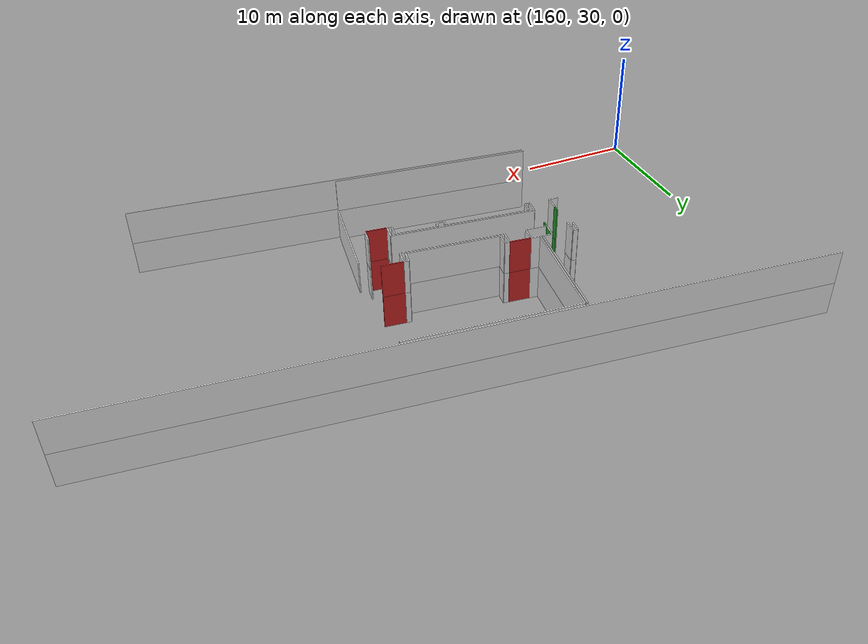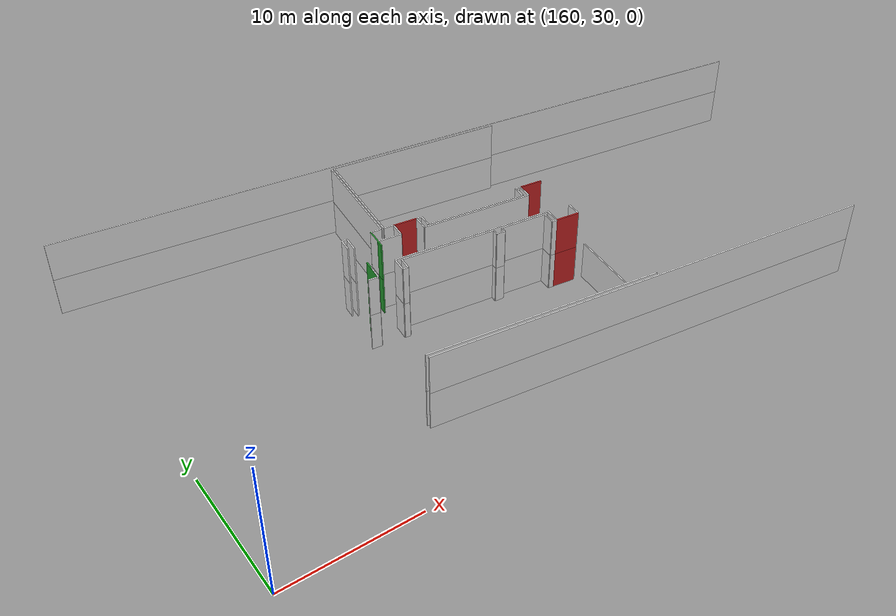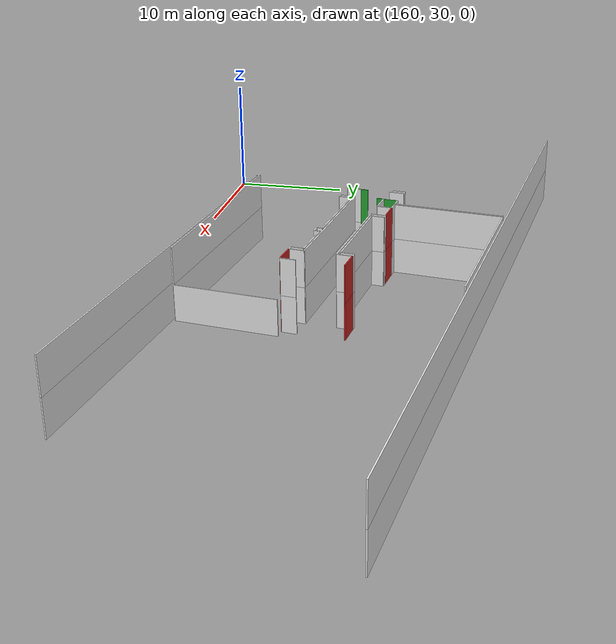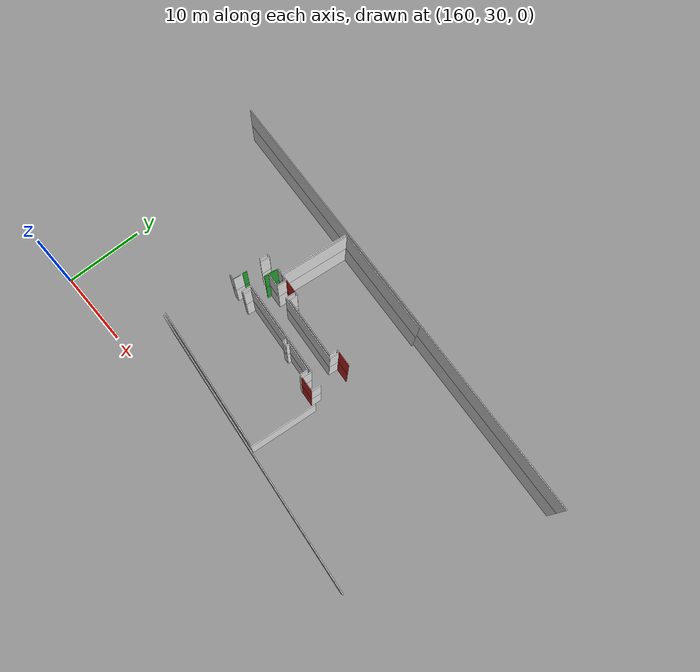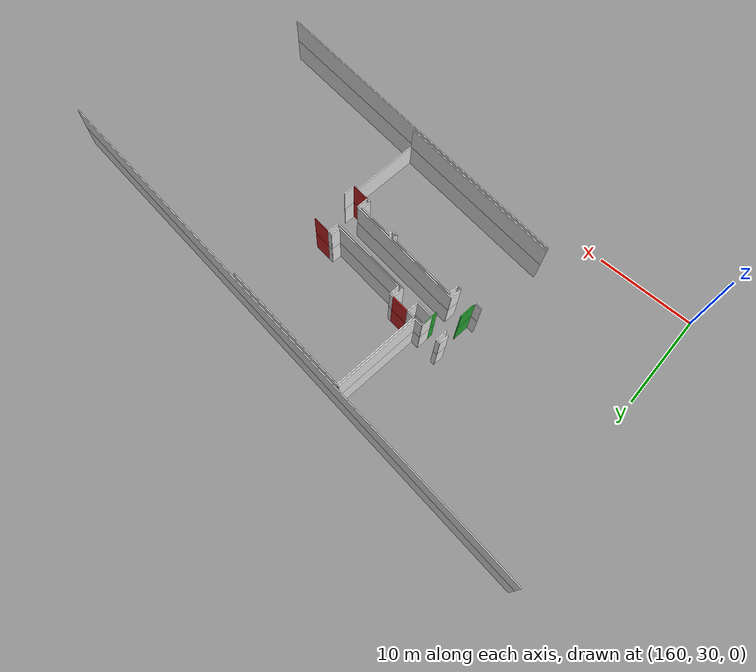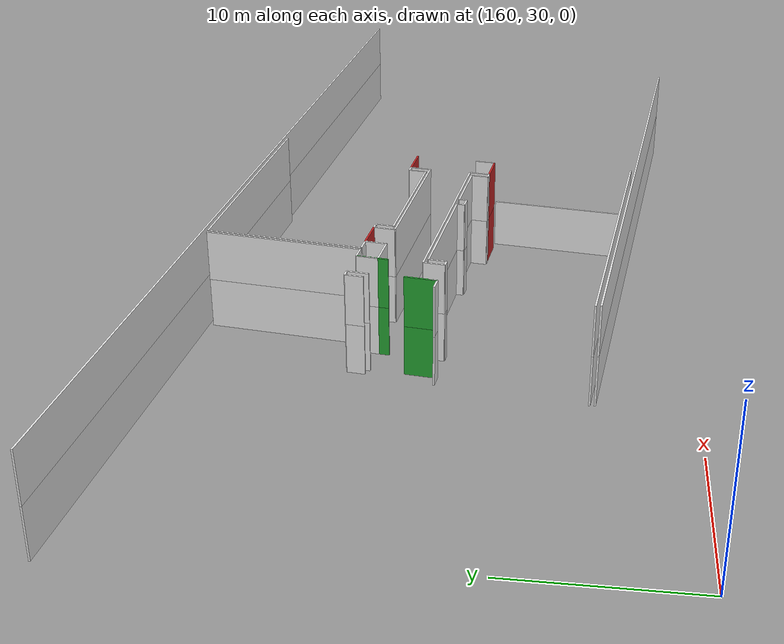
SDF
<sdf version="1.6">
 <world name="default">
  <model name="wall_191.0_47.1_1.5">
   <static>true</static>
   <pose>190.97500000000582 47.06499999994412 1.5 0 0 3.02480805813934</pose>
   <link name="link">
    <visual name="visual">
     <geometry><box><size>1.8022763383869123 0.1 3</size></box></geometry>
     <material>
      <script><uri>file://media/materials/scripts/gazebo.material</uri><name>Gazebo/Red</name></script>
     </material>
    </visual>
    <collision name="collision"><geometry><box><size>1.8022763383869123 0.1 3</size></box></geometry></collision>
   </link>
  </model>
  <model name="wall_180.6_48.3_1.5">
   <static>true</static>
   <pose>180.6350000000093 48.31000000005588 1.5 0 0 3.0193009299888676</pose>
   <link name="link">
    <visual name="visual">
     <geometry><box><size>1.8034688796923075 0.1 3</size></box></geometry>
     <material>
      <script><uri>file://media/materials/scripts/gazebo.material</uri><name>Gazebo/Red</name></script>
     </material>
    </visual>
    <collision name="collision"><geometry><box><size>1.8034688796923075 0.1 3</size></box></geometry></collision>
   </link>
  </model>
  <model name="wall_175.8_44.9_1.5">
   <static>true</static>
   <pose>175.80500000022585 44.86500000022352 1.5 0 0 1.4540117310915928</pose>
   <link name="link">
    <visual name="visual">
     <geometry><box><size>1.802276338498982 0.1 3</size></box></geometry>
     <material>
      <script><uri>file://media/materials/scripts/gazebo.material</uri><name>Gazebo/Green</name></script>
     </material>
    </visual>
    <collision name="collision"><geometry><box><size>1.802276338498982 0.1 3</size></box></geometry></collision>
   </link>
  </model>
  <model name="wall_190.5_42.2_1.5">
   <static>true</static>
   <pose>190.5 42.18999999994412 1.5 0 0 -0.12161902311549111</pose>
   <link name="link">
    <visual name="visual">
     <geometry><box><size>1.8133946068224918 0.1 3</size></box></geometry>
     <material>
      <script><uri>file://media/materials/scripts/gazebo.material</uri><name>Gazebo/Red</name></script>
     </material>
    </visual>
    <collision name="collision"><geometry><box><size>1.8133946068224918 0.1 3</size></box></geometry></collision>
   </link>
  </model>
  <model name="wall_177.8_47.7_1.5">
   <static>true</static>
   <pose>177.8499999999185 47.734999999869615 1.5 0 0 -1.6930880506520969</pose>
   <link name="link">
    <visual name="visual">
     <geometry><box><size>1.803468879749112 0.1 3</size></box></geometry>
     <material>
      <script><uri>file://media/materials/scripts/gazebo.material</uri><name>Gazebo/Green</name></script>
     </material>
    </visual>
    <collision name="collision"><geometry><box><size>1.803468879749112 0.1 3</size></box></geometry></collision>
   </link>
  </model>
  <model name="wall_191.0_47.1_4.5">
   <static>true</static>
   <pose>190.97500000000582 47.06499999994412 4.5 0 0 3.02480805813934</pose>
   <link name="link">
    <visual name="visual">
     <geometry><box><size>1.8022763383869123 0.1 3</size></box></geometry>
     <material>
      <script><uri>file://media/materials/scripts/gazebo.material</uri><name>Gazebo/Red</name></script>
     </material>
    </visual>
    <collision name="collision"><geometry><box><size>1.8022763383869123 0.1 3</size></box></geometry></collision>
   </link>
  </model>
  <model name="wall_180.6_48.3_4.5">
   <static>true</static>
   <pose>180.6350000000093 48.31000000005588 4.5 0 0 3.0193009299888676</pose>
   <link name="link">
    <visual name="visual">
     <geometry><box><size>1.8034688796923075 0.1 3</size></box></geometry>
     <material>
      <script><uri>file://media/materials/scripts/gazebo.material</uri><name>Gazebo/Red</name></script>
     </material>
    </visual>
    <collision name="collision"><geometry><box><size>1.8034688796923075 0.1 3</size></box></geometry></collision>
   </link>
  </model>
  <model name="wall_175.8_44.9_4.5">
   <static>true</static>
   <pose>175.80500000022585 44.86500000022352 4.5 0 0 1.4540117310915928</pose>
   <link name="link">
    <visual name="visual">
     <geometry><box><size>1.802276338498982 0.1 3</size></box></geometry>
     <material>
      <script><uri>file://media/materials/scripts/gazebo.material</uri><name>Gazebo/Green</name></script>
     </material>
    </visual>
    <collision name="collision"><geometry><box><size>1.802276338498982 0.1 3</size></box></geometry></collision>
   </link>
  </model>
  <model name="wall_190.5_42.2_4.5">
   <static>true</static>
   <pose>190.5 42.18999999994412 4.5 0 0 -0.12161902311549111</pose>
   <link name="link">
    <visual name="visual">
     <geometry><box><size>1.8133946068224918 0.1 3</size></box></geometry>
     <material>
      <script><uri>file://media/materials/scripts/gazebo.material</uri><name>Gazebo/Red</name></script>
     </material>
    </visual>
    <collision name="collision"><geometry><box><size>1.8133946068224918 0.1 3</size></box></geometry></collision>
   </link>
  </model>
  <model name="wall_177.8_47.7_4.5">
   <static>true</static>
   <pose>177.8499999999185 47.734999999869615 4.5 0 0 -1.6930880506520969</pose>
   <link name="link">
    <visual name="visual">
     <geometry><box><size>1.803468879749112 0.1 3</size></box></geometry>
     <material>
      <script><uri>file://media/materials/scripts/gazebo.material</uri><name>Gazebo/Green</name></script>
     </material>
    </visual>
    <collision name="collision"><geometry><box><size>1.803468879749112 0.1 3</size></box></geometry></collision>
   </link>
  </model>
  <model name="wall_189.9_47.2_1.5">
   <static>true</static>
   <pose>189.88000000000466 47.19500000006519 1.5 0 0 3.01723765836245</pose>
   <link name="link">
    <visual name="visual">
     <geometry><box><size>0.4031128874726857 0.1 3</size></box></geometry>
     <material>
      <script><uri>file://media/materials/scripts/gazebo.material</uri><name>Gazebo/White</name></script>
     </material>
    </visual>
    <collision name="collision"><geometry><box><size>0.4031128874726857 0.1 3</size></box></geometry></collision>
   </link>
  </model>
  <model name="wall_189.6_46.7_1.5">
   <static>true</static>
   <pose>189.6149999999907 46.71000000019558 1.5 0 0 -1.6975638618984608</pose>
   <link name="link">
    <visual name="visual">
     <geometry><box><size>1.028250942153329 0.1 3</size></box></geometry>
     <material>
      <script><uri>file://media/materials/scripts/gazebo.material</uri><name>Gazebo/White</name></script>
     </material>
    </visual>
    <collision name="collision"><geometry><box><size>1.028250942153329 0.1 3</size></box></geometry></collision>
   </link>
  </model>
  <model name="wall_185.7_46.7_1.5">
   <static>true</static>
   <pose>185.67999999999302 46.66500000003725 1.5 0 0 3.0220108925195217</pose>
   <link name="link">
    <visual name="visual">
     <geometry><box><size>7.79567187606697 0.1 3</size></box></geometry>
     <material>
      <script><uri>file://media/materials/scripts/gazebo.material</uri><name>Gazebo/White</name></script>
     </material>
    </visual>
    <collision name="collision"><geometry><box><size>7.79567187606697 0.1 3</size></box></geometry></collision>
   </link>
  </model>
  <model name="wall_181.9_47.6_1.5">
   <static>true</static>
   <pose>181.86999999999534 47.639999999897555 1.5 0 0 1.4536875822346544</pose>
   <link name="link">
    <visual name="visual">
     <geometry><box><size>1.0270345661353761 0.1 3</size></box></geometry>
     <material>
      <script><uri>file://media/materials/scripts/gazebo.material</uri><name>Gazebo/White</name></script>
     </material>
    </visual>
    <collision name="collision"><geometry><box><size>1.0270345661353761 0.1 3</size></box></geometry></collision>
   </link>
  </model>
  <model name="wall_181.7_48.2_1.5">
   <static>true</static>
   <pose>181.73000000001048 48.175000000046566 1.5 0 0 3.01723765834454</pose>
   <link name="link">
    <visual name="visual">
     <geometry><box><size>0.4031128874149275 0.1 3</size></box></geometry>
     <material>
      <script><uri>file://media/materials/scripts/gazebo.material</uri><name>Gazebo/White</name></script>
     </material>
    </visual>
    <collision name="collision"><geometry><box><size>0.4031128874149275 0.1 3</size></box></geometry></collision>
   </link>
  </model>
  <model name="wall_179.4_48.5_1.5">
   <static>true</static>
   <pose>179.35000000000582 48.46499999985099 1.5 0 0 3.026716048357006</pose>
   <link name="link">
    <visual name="visual">
     <geometry><box><size>0.7851751396509952 0.1 3</size></box></geometry>
     <material>
      <script><uri>file://media/materials/scripts/gazebo.material</uri><name>Gazebo/White</name></script>
     </material>
    </visual>
    <collision name="collision"><geometry><box><size>0.7851751396509952 0.1 3</size></box></geometry></collision>
   </link>
  </model>
  <model name="wall_179.5_52.9_1.5">
   <static>true</static>
   <pose>179.49500000002445 52.949999999953434 1.5 0 0 1.4508789678012857</pose>
   <link name="link">
    <visual name="visual">
     <geometry><box><size>8.944232779076149 0.1 3</size></box></geometry>
     <material>
      <script><uri>file://media/materials/scripts/gazebo.material</uri><name>Gazebo/White</name></script>
     </material>
    </visual>
    <collision name="collision"><geometry><box><size>8.944232779076149 0.1 3</size></box></geometry></collision>
   </link>
  </model>
  <model name="wall_186.9_56.6_1.5">
   <static>true</static>
   <pose>186.89000000001397 56.56000000005588 1.5 0 0 -0.12040599336592878</pose>
   <link name="link">
    <visual name="visual">
     <geometry><box><size>13.820057886989042 0.1 3</size></box></geometry>
     <material>
      <script><uri>file://media/materials/scripts/gazebo.material</uri><name>Gazebo/White</name></script>
     </material>
    </visual>
    <collision name="collision"><geometry><box><size>13.820057886989042 0.1 3</size></box></geometry></collision>
   </link>
  </model>
  <model name="wall_191.5_42.7_1.5">
   <static>true</static>
   <pose>191.47000000000116 42.675000000046566 1.5 0 0 -1.6879050713305428</pose>
   <link name="link">
    <visual name="visual">
     <geometry><box><size>1.1982069937429929 0.1 3</size></box></geometry>
     <material>
      <script><uri>file://media/materials/scripts/gazebo.material</uri><name>Gazebo/White</name></script>
     </material>
    </visual>
    <collision name="collision"><geometry><box><size>1.1982069937429929 0.1 3</size></box></geometry></collision>
   </link>
  </model>
  <model name="wall_189.7_42.9_1.5">
   <static>true</static>
   <pose>189.67499999998836 42.89500000001863 1.5 0 0 1.445407206476848</pose>
   <link name="link">
    <visual name="visual">
     <geometry><box><size>1.199416525224772 0.1 3</size></box></geometry>
     <material>
      <script><uri>file://media/materials/scripts/gazebo.material</uri><name>Gazebo/White</name></script>
     </material>
    </visual>
    <collision name="collision"><geometry><box><size>1.199416525224772 0.1 3</size></box></geometry></collision>
   </link>
  </model>
  <model name="wall_183.7_44.2_1.5">
   <static>true</static>
   <pose>183.69000000000233 44.22000000020489 1.5 0 0 3.021708265311705</pose>
   <link name="link">
    <visual name="visual">
     <geometry><box><size>12.207620570765556 0.1 3</size></box></geometry>
     <material>
      <script><uri>file://media/materials/scripts/gazebo.material</uri><name>Gazebo/White</name></script>
     </material>
    </visual>
    <collision name="collision"><geometry><box><size>12.207620570765556 0.1 3</size></box></geometry></collision>
   </link>
  </model>
  <model name="wall_177.6_44.4_1.5">
   <static>true</static>
   <pose>177.55999999999767 44.35499999998137 1.5 0 0 -1.6879050713333807</pose>
   <link name="link">
    <visual name="visual">
     <geometry><box><size>1.1982069942122657 0.1 3</size></box></geometry>
     <material>
      <script><uri>file://media/materials/scripts/gazebo.material</uri><name>Gazebo/White</name></script>
     </material>
    </visual>
    <collision name="collision"><geometry><box><size>1.1982069942122657 0.1 3</size></box></geometry></collision>
   </link>
  </model>
  <model name="wall_175.8_44.6_1.5">
   <static>true</static>
   <pose>175.77499999999418 44.56500000017695 1.5 0 0 1.4454072064764434</pose>
   <link name="link">
    <visual name="visual">
     <geometry><box><size>1.199416524755487 0.1 3</size></box></geometry>
     <material>
      <script><uri>file://media/materials/scripts/gazebo.material</uri><name>Gazebo/White</name></script>
     </material>
    </visual>
    <collision name="collision"><geometry><box><size>1.199416524755487 0.1 3</size></box></geometry></collision>
   </link>
  </model>
  <model name="wall_176.1_48.2_1.5">
   <static>true</static>
   <pose>176.09500000000116 48.24500000011176 1.5 0 0 1.4474586259198403</pose>
   <link name="link">
    <visual name="visual">
     <geometry><box><size>1.2192620718694447 0.1 3</size></box></geometry>
     <material>
      <script><uri>file://media/materials/scripts/gazebo.material</uri><name>Gazebo/White</name></script>
     </material>
    </visual>
    <collision name="collision"><geometry><box><size>1.2192620718694447 0.1 3</size></box></geometry></collision>
   </link>
  </model>
  <model name="wall_177.9_48.0_1.5">
   <static>true</static>
   <pose>177.8850000000093 48.02499999990687 1.5 0 0 -1.6941340277173305</pose>
   <link name="link">
    <visual name="visual">
     <geometry><box><size>1.2192620718766056 0.1 3</size></box></geometry>
     <material>
      <script><uri>file://media/materials/scripts/gazebo.material</uri><name>Gazebo/White</name></script>
     </material>
    </visual>
    <collision name="collision"><geometry><box><size>1.2192620718766056 0.1 3</size></box></geometry></collision>
   </link>
  </model>
  <model name="wall_178.7_47.3_1.5">
   <static>true</static>
   <pose>178.70000000001164 47.31499999994412 1.5 0 0 -0.11743468977405322</pose>
   <link name="link">
    <visual name="visual">
     <geometry><box><size>1.7923448329168745 0.1 3</size></box></geometry>
     <material>
      <script><uri>file://media/materials/scripts/gazebo.material</uri><name>Gazebo/White</name></script>
     </material>
    </visual>
    <collision name="collision"><geometry><box><size>1.7923448329168745 0.1 3</size></box></geometry></collision>
   </link>
  </model>
  <model name="wall_179.7_47.8_1.5">
   <static>true</static>
   <pose>179.66500000000815 47.81499999994412 1.5 0 0 1.4474586259198403</pose>
   <link name="link">
    <visual name="visual">
     <geometry><box><size>1.2192620718694447 0.1 3</size></box></geometry>
     <material>
      <script><uri>file://media/materials/scripts/gazebo.material</uri><name>Gazebo/White</name></script>
     </material>
    </visual>
    <collision name="collision"><geometry><box><size>1.2192620718694447 0.1 3</size></box></geometry></collision>
   </link>
  </model>
  <model name="wall_181.5_47.6_1.5">
   <static>true</static>
   <pose>181.4550000000163 47.59500000020489 1.5 0 0 -1.6941340277173305</pose>
   <link name="link">
    <visual name="visual">
     <geometry><box><size>1.2192620718766056 0.1 3</size></box></geometry>
     <material>
      <script><uri>file://media/materials/scripts/gazebo.material</uri><name>Gazebo/White</name></script>
     </material>
    </visual>
    <collision name="collision"><geometry><box><size>1.2192620718766056 0.1 3</size></box></geometry></collision>
   </link>
  </model>
  <model name="wall_185.7_46.5_1.5">
   <static>true</static>
   <pose>185.65499999999884 46.47500000009313 1.5 0 0 -0.11989009554178759</pose>
   <link name="link">
    <visual name="visual">
     <geometry><box><size>8.611817462088831 0.1 3</size></box></geometry>
     <material>
      <script><uri>file://media/materials/scripts/gazebo.material</uri><name>Gazebo/White</name></script>
     </material>
    </visual>
    <collision name="collision"><geometry><box><size>8.611817462088831 0.1 3</size></box></geometry></collision>
   </link>
  </model>
  <model name="wall_190.0_46.6_1.5">
   <static>true</static>
   <pose>190.00500000000466 46.56499999994412 1.5 0 0 1.4474586258724629</pose>
   <link name="link">
    <visual name="visual">
     <geometry><box><size>1.2192620718766056 0.1 3</size></box></geometry>
     <material>
      <script><uri>file://media/materials/scripts/gazebo.material</uri><name>Gazebo/White</name></script>
     </material>
    </visual>
    <collision name="collision"><geometry><box><size>1.2192620718766056 0.1 3</size></box></geometry></collision>
   </link>
  </model>
  <model name="wall_178.4_48.6_1.5">
   <static>true</static>
   <pose>178.36000000001513 48.579999999841675 1.5 0 0 3.0172376589266166</pose>
   <link name="link">
    <visual name="visual">
     <geometry><box><size>0.806225774829855 0.1 3</size></box></geometry>
     <material>
      <script><uri>file://media/materials/scripts/gazebo.material</uri><name>Gazebo/White</name></script>
     </material>
    </visual>
    <collision name="collision"><geometry><box><size>0.806225774829855 0.1 3</size></box></geometry></collision>
   </link>
  </model>
  <model name="wall_176.0_48.9_1.5">
   <static>true</static>
   <pose>175.97000000000116 48.87000000011176 1.5 0 0 3.0419240009977764</pose>
   <link name="link">
    <visual name="visual">
     <geometry><box><size>0.4019950248137912 0.1 3</size></box></geometry>
     <material>
      <script><uri>file://media/materials/scripts/gazebo.material</uri><name>Gazebo/White</name></script>
     </material>
    </visual>
    <collision name="collision"><geometry><box><size>0.4019950248137912 0.1 3</size></box></geometry></collision>
   </link>
  </model>
  <model name="wall_175.7_48.4_1.5">
   <static>true</static>
   <pose>175.71000000002095 48.38000000012107 1.5 0 0 -1.687905071355139</pose>
   <link name="link">
    <visual name="visual">
     <geometry><box><size>1.0270345661353761 0.1 3</size></box></geometry>
     <material>
      <script><uri>file://media/materials/scripts/gazebo.material</uri><name>Gazebo/White</name></script>
     </material>
    </visual>
    <collision name="collision"><geometry><box><size>1.0270345661353761 0.1 3</size></box></geometry></collision>
   </link>
  </model>
  <model name="wall_179.3_53.0_1.5">
   <static>true</static>
   <pose>179.30000000001746 52.96999999997206 1.5 0 0 -1.6918235466011338</pose>
   <link name="link">
    <visual name="visual">
     <geometry><box><size>8.945434590131466 0.1 3</size></box></geometry>
     <material>
      <script><uri>file://media/materials/scripts/gazebo.material</uri><name>Gazebo/White</name></script>
     </material>
    </visual>
    <collision name="collision"><geometry><box><size>8.945434590131466 0.1 3</size></box></geometry></collision>
   </link>
  </model>
  <model name="wall_185.4_43.4_1.5">
   <static>true</static>
   <pose>185.40499999999884 43.359999999869615 1.5 0 0 3.0191315960530236</pose>
   <link name="link">
    <visual name="visual">
     <geometry><box><size>0.6549045731757559 0.1 3</size></box></geometry>
     <material>
      <script><uri>file://media/materials/scripts/gazebo.material</uri><name>Gazebo/White</name></script>
     </material>
    </visual>
    <collision name="collision"><geometry><box><size>0.6549045731757559 0.1 3</size></box></geometry></collision>
   </link>
  </model>
  <model name="wall_185.1_43.6_1.5">
   <static>true</static>
   <pose>185.11000000001513 43.625 1.5 0 0 1.4382447945575316</pose>
   <link name="link">
    <visual name="visual">
     <geometry><box><size>0.45398237869696956 0.1 3</size></box></geometry>
     <material>
      <script><uri>file://media/materials/scripts/gazebo.material</uri><name>Gazebo/White</name></script>
     </material>
    </visual>
    <collision name="collision"><geometry><box><size>0.45398237869696956 0.1 3</size></box></geometry></collision>
   </link>
  </model>
  <model name="wall_181.6_44.3_1.5">
   <static>true</static>
   <pose>181.57500000001164 44.2750000001397 1.5 0 0 3.0229380636870755</pose>
   <link name="link">
    <visual name="visual">
     <geometry><box><size>7.180487448650316 0.1 3</size></box></geometry>
     <material>
      <script><uri>file://media/materials/scripts/gazebo.material</uri><name>Gazebo/White</name></script>
     </material>
    </visual>
    <collision name="collision"><geometry><box><size>7.180487448650316 0.1 3</size></box></geometry></collision>
   </link>
  </model>
  <model name="wall_178.0_44.2_1.5">
   <static>true</static>
   <pose>177.95000000001164 44.205000000074506 1.5 0 0 -1.6914199953433933</pose>
   <link name="link">
    <visual name="visual">
     <geometry><box><size>0.9972462085370126 0.1 3</size></box></geometry>
     <material>
      <script><uri>file://media/materials/scripts/gazebo.material</uri><name>Gazebo/White</name></script>
     </material>
    </visual>
    <collision name="collision"><geometry><box><size>0.9972462085370126 0.1 3</size></box></geometry></collision>
   </link>
  </model>
  <model name="wall_177.7_43.7_1.5">
   <static>true</static>
   <pose>177.69000000000233 43.734999999869615 1.5 0 0 3.017237659508693</pose>
   <link name="link">
    <visual name="visual">
     <geometry><box><size>0.4031128874149275 0.1 3</size></box></geometry>
     <material>
      <script><uri>file://media/materials/scripts/gazebo.material</uri><name>Gazebo/White</name></script>
     </material>
    </visual>
    <collision name="collision"><geometry><box><size>0.4031128874149275 0.1 3</size></box></geometry></collision>
   </link>
  </model>
  <model name="wall_175.3_44.0_1.5">
   <static>true</static>
   <pose>175.3300000000163 44.015000000130385 1.5 0 0 3.0205654339775116</pose>
   <link name="link">
    <visual name="visual">
     <geometry><box><size>0.7454528824542799 0.1 3</size></box></geometry>
     <material>
      <script><uri>file://media/materials/scripts/gazebo.material</uri><name>Gazebo/White</name></script>
     </material>
    </visual>
    <collision name="collision"><geometry><box><size>0.7454528824542799 0.1 3</size></box></geometry></collision>
   </link>
  </model>
  <model name="wall_182.5_34.7_1.5">
   <static>true</static>
   <pose>182.5450000000128 34.71500000008382 1.5 0 0 -0.11984180790102025</pose>
   <link name="link">
    <visual name="visual">
     <geometry><box><size>17.31418493603976 0.1 3</size></box></geometry>
     <material>
      <script><uri>file://media/materials/scripts/gazebo.material</uri><name>Gazebo/White</name></script>
     </material>
    </visual>
    <collision name="collision"><geometry><box><size>17.31418493603976 0.1 3</size></box></geometry></collision>
   </link>
  </model>
  <model name="wall_191.6_37.8_1.5">
   <static>true</static>
   <pose>191.64500000001863 37.83500000019558 1.5 0 0 1.449849231338217</pose>
   <link name="link">
    <visual name="visual">
     <geometry><box><size>8.371152847783126 0.1 3</size></box></geometry>
     <material>
      <script><uri>file://media/materials/scripts/gazebo.material</uri><name>Gazebo/White</name></script>
     </material>
    </visual>
    <collision name="collision"><geometry><box><size>8.371152847783126 0.1 3</size></box></geometry></collision>
   </link>
  </model>
  <model name="wall_189.4_42.3_1.5">
   <static>true</static>
   <pose>189.40499999999884 42.31999999983236 1.5 0 0 3.039385935376501</pose>
   <link name="link">
    <visual name="visual">
     <geometry><box><size>0.3920459156380471 0.1 3</size></box></geometry>
     <material>
      <script><uri>file://media/materials/scripts/gazebo.material</uri><name>Gazebo/White</name></script>
     </material>
    </visual>
    <collision name="collision"><geometry><box><size>0.3920459156380471 0.1 3</size></box></geometry></collision>
   </link>
  </model>
  <model name="wall_189.3_42.8_1.5">
   <static>true</static>
   <pose>189.27000000001863 42.83999999985099 1.5 0 0 1.4513674007811488</pose>
   <link name="link">
    <visual name="visual">
     <geometry><box><size>1.0071742649605788 0.1 3</size></box></geometry>
     <material>
      <script><uri>file://media/materials/scripts/gazebo.material</uri><name>Gazebo/White</name></script>
     </material>
    </visual>
    <collision name="collision"><geometry><box><size>1.0071742649605788 0.1 3</size></box></geometry></collision>
   </link>
  </model>
  <model name="wall_187.6_43.6_1.5">
   <static>true</static>
   <pose>187.55500000002212 43.55499999993481 1.5 0 0 3.02105311047783</pose>
   <link name="link">
    <visual name="visual">
     <geometry><box><size>3.5759474269152105 0.1 3</size></box></geometry>
     <material>
      <script><uri>file://media/materials/scripts/gazebo.material</uri><name>Gazebo/White</name></script>
     </material>
    </visual>
    <collision name="collision"><geometry><box><size>3.5759474269152105 0.1 3</size></box></geometry></collision>
   </link>
  </model>
  <model name="wall_185.8_43.5_1.5">
   <static>true</static>
   <pose>185.75500000000466 43.544999999925494 1.5 0 0 -1.6814535480255803</pose>
   <link name="link">
    <visual name="visual">
     <geometry><box><size>0.45276925709713844 0.1 3</size></box></geometry>
     <material>
      <script><uri>file://media/materials/scripts/gazebo.material</uri><name>Gazebo/White</name></script>
     </material>
    </visual>
    <collision name="collision"><geometry><box><size>0.45276925709713844 0.1 3</size></box></geometry></collision>
   </link>
  </model>
  <model name="wall_191.2_33.4_1.5">
   <static>true</static>
   <pose>191.20999999999185 33.389999999897555 1.5 0 0 -0.11970386529944234</pose>
   <link name="link">
    <visual name="visual">
     <geometry><box><size>34.668083304387594 0.1 3</size></box></geometry>
     <material>
      <script><uri>file://media/materials/scripts/gazebo.material</uri><name>Gazebo/White</name></script>
     </material>
    </visual>
    <collision name="collision"><geometry><box><size>34.668083304387594 0.1 3</size></box></geometry></collision>
   </link>
  </model>
  <model name="wall_188.0_56.7_1.5">
   <static>true</static>
   <pose>187.95000000001164 56.71500000008382 1.5 0 0 3.0216988150240605</pose>
   <link name="link">
    <visual name="visual">
     <geometry><box><size>58.943132763758996 0.1 3</size></box></geometry>
     <material>
      <script><uri>file://media/materials/scripts/gazebo.material</uri><name>Gazebo/White</name></script>
     </material>
    </visual>
    <collision name="collision"><geometry><box><size>58.943132763758996 0.1 3</size></box></geometry></collision>
   </link>
  </model>
  <model name="wall_189.9_47.2_4.5">
   <static>true</static>
   <pose>189.88000000000466 47.19500000006519 4.5 0 0 3.01723765836245</pose>
   <link name="link">
    <visual name="visual">
     <geometry><box><size>0.4031128874726857 0.1 3</size></box></geometry>
     <material>
      <script><uri>file://media/materials/scripts/gazebo.material</uri><name>Gazebo/White</name></script>
     </material>
    </visual>
    <collision name="collision"><geometry><box><size>0.4031128874726857 0.1 3</size></box></geometry></collision>
   </link>
  </model>
  <model name="wall_189.6_46.7_4.5">
   <static>true</static>
   <pose>189.6149999999907 46.71000000019558 4.5 0 0 -1.6975638618984608</pose>
   <link name="link">
    <visual name="visual">
     <geometry><box><size>1.028250942153329 0.1 3</size></box></geometry>
     <material>
      <script><uri>file://media/materials/scripts/gazebo.material</uri><name>Gazebo/White</name></script>
     </material>
    </visual>
    <collision name="collision"><geometry><box><size>1.028250942153329 0.1 3</size></box></geometry></collision>
   </link>
  </model>
  <model name="wall_185.7_46.7_4.5">
   <static>true</static>
   <pose>185.67999999999302 46.66500000003725 4.5 0 0 3.0220108925195217</pose>
   <link name="link">
    <visual name="visual">
     <geometry><box><size>7.79567187606697 0.1 3</size></box></geometry>
     <material>
      <script><uri>file://media/materials/scripts/gazebo.material</uri><name>Gazebo/White</name></script>
     </material>
    </visual>
    <collision name="collision"><geometry><box><size>7.79567187606697 0.1 3</size></box></geometry></collision>
   </link>
  </model>
  <model name="wall_181.9_47.6_4.5">
   <static>true</static>
   <pose>181.86999999999534 47.639999999897555 4.5 0 0 1.4536875822346544</pose>
   <link name="link">
    <visual name="visual">
     <geometry><box><size>1.0270345661353761 0.1 3</size></box></geometry>
     <material>
      <script><uri>file://media/materials/scripts/gazebo.material</uri><name>Gazebo/White</name></script>
     </material>
    </visual>
    <collision name="collision"><geometry><box><size>1.0270345661353761 0.1 3</size></box></geometry></collision>
   </link>
  </model>
  <model name="wall_181.7_48.2_4.5">
   <static>true</static>
   <pose>181.73000000001048 48.175000000046566 4.5 0 0 3.01723765834454</pose>
   <link name="link">
    <visual name="visual">
     <geometry><box><size>0.4031128874149275 0.1 3</size></box></geometry>
     <material>
      <script><uri>file://media/materials/scripts/gazebo.material</uri><name>Gazebo/White</name></script>
     </material>
    </visual>
    <collision name="collision"><geometry><box><size>0.4031128874149275 0.1 3</size></box></geometry></collision>
   </link>
  </model>
  <model name="wall_179.4_48.5_4.5">
   <static>true</static>
   <pose>179.35000000000582 48.46499999985099 4.5 0 0 3.026716048357006</pose>
   <link name="link">
    <visual name="visual">
     <geometry><box><size>0.7851751396509952 0.1 3</size></box></geometry>
     <material>
      <script><uri>file://media/materials/scripts/gazebo.material</uri><name>Gazebo/White</name></script>
     </material>
    </visual>
    <collision name="collision"><geometry><box><size>0.7851751396509952 0.1 3</size></box></geometry></collision>
   </link>
  </model>
  <model name="wall_179.5_52.9_4.5">
   <static>true</static>
   <pose>179.49500000002445 52.949999999953434 4.5 0 0 1.4508789678012857</pose>
   <link name="link">
    <visual name="visual">
     <geometry><box><size>8.944232779076149 0.1 3</size></box></geometry>
     <material>
      <script><uri>file://media/materials/scripts/gazebo.material</uri><name>Gazebo/White</name></script>
     </material>
    </visual>
    <collision name="collision"><geometry><box><size>8.944232779076149 0.1 3</size></box></geometry></collision>
   </link>
  </model>
  <model name="wall_186.9_56.6_4.5">
   <static>true</static>
   <pose>186.89000000001397 56.56000000005588 4.5 0 0 -0.12040599336592878</pose>
   <link name="link">
    <visual name="visual">
     <geometry><box><size>13.820057886989042 0.1 3</size></box></geometry>
     <material>
      <script><uri>file://media/materials/scripts/gazebo.material</uri><name>Gazebo/White</name></script>
     </material>
    </visual>
    <collision name="collision"><geometry><box><size>13.820057886989042 0.1 3</size></box></geometry></collision>
   </link>
  </model>
  <model name="wall_191.5_42.7_4.5">
   <static>true</static>
   <pose>191.47000000000116 42.675000000046566 4.5 0 0 -1.6879050713305428</pose>
   <link name="link">
    <visual name="visual">
     <geometry><box><size>1.1982069937429929 0.1 3</size></box></geometry>
     <material>
      <script><uri>file://media/materials/scripts/gazebo.material</uri><name>Gazebo/White</name></script>
     </material>
    </visual>
    <collision name="collision"><geometry><box><size>1.1982069937429929 0.1 3</size></box></geometry></collision>
   </link>
  </model>
  <model name="wall_189.7_42.9_4.5">
   <static>true</static>
   <pose>189.67499999998836 42.89500000001863 4.5 0 0 1.445407206476848</pose>
   <link name="link">
    <visual name="visual">
     <geometry><box><size>1.199416525224772 0.1 3</size></box></geometry>
     <material>
      <script><uri>file://media/materials/scripts/gazebo.material</uri><name>Gazebo/White</name></script>
     </material>
    </visual>
    <collision name="collision"><geometry><box><size>1.199416525224772 0.1 3</size></box></geometry></collision>
   </link>
  </model>
  <model name="wall_183.7_44.2_4.5">
   <static>true</static>
   <pose>183.69000000000233 44.22000000020489 4.5 0 0 3.021708265311705</pose>
   <link name="link">
    <visual name="visual">
     <geometry><box><size>12.207620570765556 0.1 3</size></box></geometry>
     <material>
      <script><uri>file://media/materials/scripts/gazebo.material</uri><name>Gazebo/White</name></script>
     </material>
    </visual>
    <collision name="collision"><geometry><box><size>12.207620570765556 0.1 3</size></box></geometry></collision>
   </link>
  </model>
  <model name="wall_177.6_44.4_4.5">
   <static>true</static>
   <pose>177.55999999999767 44.35499999998137 4.5 0 0 -1.6879050713333807</pose>
   <link name="link">
    <visual name="visual">
     <geometry><box><size>1.1982069942122657 0.1 3</size></box></geometry>
     <material>
      <script><uri>file://media/materials/scripts/gazebo.material</uri><name>Gazebo/White</name></script>
     </material>
    </visual>
    <collision name="collision"><geometry><box><size>1.1982069942122657 0.1 3</size></box></geometry></collision>
   </link>
  </model>
  <model name="wall_175.8_44.6_4.5">
   <static>true</static>
   <pose>175.77499999999418 44.56500000017695 4.5 0 0 1.4454072064764434</pose>
   <link name="link">
    <visual name="visual">
     <geometry><box><size>1.199416524755487 0.1 3</size></box></geometry>
     <material>
      <script><uri>file://media/materials/scripts/gazebo.material</uri><name>Gazebo/White</name></script>
     </material>
    </visual>
    <collision name="collision"><geometry><box><size>1.199416524755487 0.1 3</size></box></geometry></collision>
   </link>
  </model>
  <model name="wall_176.1_48.2_4.5">
   <static>true</static>
   <pose>176.09500000000116 48.24500000011176 4.5 0 0 1.4474586259198403</pose>
   <link name="link">
    <visual name="visual">
     <geometry><box><size>1.2192620718694447 0.1 3</size></box></geometry>
     <material>
      <script><uri>file://media/materials/scripts/gazebo.material</uri><name>Gazebo/White</name></script>
     </material>
    </visual>
    <collision name="collision"><geometry><box><size>1.2192620718694447 0.1 3</size></box></geometry></collision>
   </link>
  </model>
  <model name="wall_177.9_48.0_4.5">
   <static>true</static>
   <pose>177.8850000000093 48.02499999990687 4.5 0 0 -1.6941340277173305</pose>
   <link name="link">
    <visual name="visual">
     <geometry><box><size>1.2192620718766056 0.1 3</size></box></geometry>
     <material>
      <script><uri>file://media/materials/scripts/gazebo.material</uri><name>Gazebo/White</name></script>
     </material>
    </visual>
    <collision name="collision"><geometry><box><size>1.2192620718766056 0.1 3</size></box></geometry></collision>
   </link>
  </model>
  <model name="wall_178.7_47.3_4.5">
   <static>true</static>
   <pose>178.70000000001164 47.31499999994412 4.5 0 0 -0.11743468977405322</pose>
   <link name="link">
    <visual name="visual">
     <geometry><box><size>1.7923448329168745 0.1 3</size></box></geometry>
     <material>
      <script><uri>file://media/materials/scripts/gazebo.material</uri><name>Gazebo/White</name></script>
     </material>
    </visual>
    <collision name="collision"><geometry><box><size>1.7923448329168745 0.1 3</size></box></geometry></collision>
   </link>
  </model>
  <model name="wall_179.7_47.8_4.5">
   <static>true</static>
   <pose>179.66500000000815 47.81499999994412 4.5 0 0 1.4474586259198403</pose>
   <link name="link">
    <visual name="visual">
     <geometry><box><size>1.2192620718694447 0.1 3</size></box></geometry>
     <material>
      <script><uri>file://media/materials/scripts/gazebo.material</uri><name>Gazebo/White</name></script>
     </material>
    </visual>
    <collision name="collision"><geometry><box><size>1.2192620718694447 0.1 3</size></box></geometry></collision>
   </link>
  </model>
  <model name="wall_181.5_47.6_4.5">
   <static>true</static>
   <pose>181.4550000000163 47.59500000020489 4.5 0 0 -1.6941340277173305</pose>
   <link name="link">
    <visual name="visual">
     <geometry><box><size>1.2192620718766056 0.1 3</size></box></geometry>
     <material>
      <script><uri>file://media/materials/scripts/gazebo.material</uri><name>Gazebo/White</name></script>
     </material>
    </visual>
    <collision name="collision"><geometry><box><size>1.2192620718766056 0.1 3</size></box></geometry></collision>
   </link>
  </model>
  <model name="wall_185.7_46.5_4.5">
   <static>true</static>
   <pose>185.65499999999884 46.47500000009313 4.5 0 0 -0.11989009554178759</pose>
   <link name="link">
    <visual name="visual">
     <geometry><box><size>8.611817462088831 0.1 3</size></box></geometry>
     <material>
      <script><uri>file://media/materials/scripts/gazebo.material</uri><name>Gazebo/White</name></script>
     </material>
    </visual>
    <collision name="collision"><geometry><box><size>8.611817462088831 0.1 3</size></box></geometry></collision>
   </link>
  </model>
  <model name="wall_190.0_46.6_4.5">
   <static>true</static>
   <pose>190.00500000000466 46.56499999994412 4.5 0 0 1.4474586258724629</pose>
   <link name="link">
    <visual name="visual">
     <geometry><box><size>1.2192620718766056 0.1 3</size></box></geometry>
     <material>
      <script><uri>file://media/materials/scripts/gazebo.material</uri><name>Gazebo/White</name></script>
     </material>
    </visual>
    <collision name="collision"><geometry><box><size>1.2192620718766056 0.1 3</size></box></geometry></collision>
   </link>
  </model>
  <model name="wall_178.4_48.6_4.5">
   <static>true</static>
   <pose>178.36000000001513 48.579999999841675 4.5 0 0 3.0172376589266166</pose>
   <link name="link">
    <visual name="visual">
     <geometry><box><size>0.806225774829855 0.1 3</size></box></geometry>
     <material>
      <script><uri>file://media/materials/scripts/gazebo.material</uri><name>Gazebo/White</name></script>
     </material>
    </visual>
    <collision name="collision"><geometry><box><size>0.806225774829855 0.1 3</size></box></geometry></collision>
   </link>
  </model>
  <model name="wall_176.0_48.9_4.5">
   <static>true</static>
   <pose>175.97000000000116 48.87000000011176 4.5 0 0 3.0419240009977764</pose>
   <link name="link">
    <visual name="visual">
     <geometry><box><size>0.4019950248137912 0.1 3</size></box></geometry>
     <material>
      <script><uri>file://media/materials/scripts/gazebo.material</uri><name>Gazebo/White</name></script>
     </material>
    </visual>
    <collision name="collision"><geometry><box><size>0.4019950248137912 0.1 3</size></box></geometry></collision>
   </link>
  </model>
  <model name="wall_175.7_48.4_4.5">
   <static>true</static>
   <pose>175.71000000002095 48.38000000012107 4.5 0 0 -1.687905071355139</pose>
   <link name="link">
    <visual name="visual">
     <geometry><box><size>1.0270345661353761 0.1 3</size></box></geometry>
     <material>
      <script><uri>file://media/materials/scripts/gazebo.material</uri><name>Gazebo/White</name></script>
     </material>
    </visual>
    <collision name="collision"><geometry><box><size>1.0270345661353761 0.1 3</size></box></geometry></collision>
   </link>
  </model>
  <model name="wall_179.3_53.0_4.5">
   <static>true</static>
   <pose>179.30000000001746 52.96999999997206 4.5 0 0 -1.6918235466011338</pose>
   <link name="link">
    <visual name="visual">
     <geometry><box><size>8.945434590131466 0.1 3</size></box></geometry>
     <material>
      <script><uri>file://media/materials/scripts/gazebo.material</uri><name>Gazebo/White</name></script>
     </material>
    </visual>
    <collision name="collision"><geometry><box><size>8.945434590131466 0.1 3</size></box></geometry></collision>
   </link>
  </model>
  <model name="wall_185.4_43.4_4.5">
   <static>true</static>
   <pose>185.40499999999884 43.359999999869615 4.5 0 0 3.0191315960530236</pose>
   <link name="link">
    <visual name="visual">
     <geometry><box><size>0.6549045731757559 0.1 3</size></box></geometry>
     <material>
      <script><uri>file://media/materials/scripts/gazebo.material</uri><name>Gazebo/White</name></script>
     </material>
    </visual>
    <collision name="collision"><geometry><box><size>0.6549045731757559 0.1 3</size></box></geometry></collision>
   </link>
  </model>
  <model name="wall_185.1_43.6_4.5">
   <static>true</static>
   <pose>185.11000000001513 43.625 4.5 0 0 1.4382447945575316</pose>
   <link name="link">
    <visual name="visual">
     <geometry><box><size>0.45398237869696956 0.1 3</size></box></geometry>
     <material>
      <script><uri>file://media/materials/scripts/gazebo.material</uri><name>Gazebo/White</name></script>
     </material>
    </visual>
    <collision name="collision"><geometry><box><size>0.45398237869696956 0.1 3</size></box></geometry></collision>
   </link>
  </model>
  <model name="wall_181.6_44.3_4.5">
   <static>true</static>
   <pose>181.57500000001164 44.2750000001397 4.5 0 0 3.0229380636870755</pose>
   <link name="link">
    <visual name="visual">
     <geometry><box><size>7.180487448650316 0.1 3</size></box></geometry>
     <material>
      <script><uri>file://media/materials/scripts/gazebo.material</uri><name>Gazebo/White</name></script>
     </material>
    </visual>
    <collision name="collision"><geometry><box><size>7.180487448650316 0.1 3</size></box></geometry></collision>
   </link>
  </model>
  <model name="wall_178.0_44.2_4.5">
   <static>true</static>
   <pose>177.95000000001164 44.205000000074506 4.5 0 0 -1.6914199953433933</pose>
   <link name="link">
    <visual name="visual">
     <geometry><box><size>0.9972462085370126 0.1 3</size></box></geometry>
     <material>
      <script><uri>file://media/materials/scripts/gazebo.material</uri><name>Gazebo/White</name></script>
     </material>
    </visual>
    <collision name="collision"><geometry><box><size>0.9972462085370126 0.1 3</size></box></geometry></collision>
   </link>
  </model>
  <model name="wall_177.7_43.7_4.5">
   <static>true</static>
   <pose>177.69000000000233 43.734999999869615 4.5 0 0 3.017237659508693</pose>
   <link name="link">
    <visual name="visual">
     <geometry><box><size>0.4031128874149275 0.1 3</size></box></geometry>
     <material>
      <script><uri>file://media/materials/scripts/gazebo.material</uri><name>Gazebo/White</name></script>
     </material>
    </visual>
    <collision name="collision"><geometry><box><size>0.4031128874149275 0.1 3</size></box></geometry></collision>
   </link>
  </model>
  <model name="wall_175.3_44.0_4.5">
   <static>true</static>
   <pose>175.3300000000163 44.015000000130385 4.5 0 0 3.0205654339775116</pose>
   <link name="link">
    <visual name="visual">
     <geometry><box><size>0.7454528824542799 0.1 3</size></box></geometry>
     <material>
      <script><uri>file://media/materials/scripts/gazebo.material</uri><name>Gazebo/White</name></script>
     </material>
    </visual>
    <collision name="collision"><geometry><box><size>0.7454528824542799 0.1 3</size></box></geometry></collision>
   </link>
  </model>
  <model name="wall_182.5_34.7_4.5">
   <static>true</static>
   <pose>182.5450000000128 34.71500000008382 4.5 0 0 -0.11984180790102025</pose>
   <link name="link">
    <visual name="visual">
     <geometry><box><size>17.31418493603976 0.1 3</size></box></geometry>
     <material>
      <script><uri>file://media/materials/scripts/gazebo.material</uri><name>Gazebo/White</name></script>
     </material>
    </visual>
    <collision name="collision"><geometry><box><size>17.31418493603976 0.1 3</size></box></geometry></collision>
   </link>
  </model>
  <model name="wall_189.4_42.3_4.5">
   <static>true</static>
   <pose>189.40499999999884 42.31999999983236 4.5 0 0 3.039385935376501</pose>
   <link name="link">
    <visual name="visual">
     <geometry><box><size>0.3920459156380471 0.1 3</size></box></geometry>
     <material>
      <script><uri>file://media/materials/scripts/gazebo.material</uri><name>Gazebo/White</name></script>
     </material>
    </visual>
    <collision name="collision"><geometry><box><size>0.3920459156380471 0.1 3</size></box></geometry></collision>
   </link>
  </model>
  <model name="wall_189.3_42.8_4.5">
   <static>true</static>
   <pose>189.27000000001863 42.83999999985099 4.5 0 0 1.4513674007811488</pose>
   <link name="link">
    <visual name="visual">
     <geometry><box><size>1.0071742649605788 0.1 3</size></box></geometry>
     <material>
      <script><uri>file://media/materials/scripts/gazebo.material</uri><name>Gazebo/White</name></script>
     </material>
    </visual>
    <collision name="collision"><geometry><box><size>1.0071742649605788 0.1 3</size></box></geometry></collision>
   </link>
  </model>
  <model name="wall_187.6_43.6_4.5">
   <static>true</static>
   <pose>187.55500000002212 43.55499999993481 4.5 0 0 3.02105311047783</pose>
   <link name="link">
    <visual name="visual">
     <geometry><box><size>3.5759474269152105 0.1 3</size></box></geometry>
     <material>
      <script><uri>file://media/materials/scripts/gazebo.material</uri><name>Gazebo/White</name></script>
     </material>
    </visual>
    <collision name="collision"><geometry><box><size>3.5759474269152105 0.1 3</size></box></geometry></collision>
   </link>
  </model>
  <model name="wall_185.8_43.5_4.5">
   <static>true</static>
   <pose>185.75500000000466 43.544999999925494 4.5 0 0 -1.6814535480255803</pose>
   <link name="link">
    <visual name="visual">
     <geometry><box><size>0.45276925709713844 0.1 3</size></box></geometry>
     <material>
      <script><uri>file://media/materials/scripts/gazebo.material</uri><name>Gazebo/White</name></script>
     </material>
    </visual>
    <collision name="collision"><geometry><box><size>0.45276925709713844 0.1 3</size></box></geometry></collision>
   </link>
  </model>
  <model name="wall_191.2_33.4_4.5">
   <static>true</static>
   <pose>191.20999999999185 33.389999999897555 4.5 0 0 -0.11970386529944234</pose>
   <link name="link">
    <visual name="visual">
     <geometry><box><size>34.668083304387594 0.1 3</size></box></geometry>
     <material>
      <script><uri>file://media/materials/scripts/gazebo.material</uri><name>Gazebo/White</name></script>
     </material>
    </visual>
    <collision name="collision"><geometry><box><size>34.668083304387594 0.1 3</size></box></geometry></collision>
   </link>
  </model>
  <model name="wall_188.0_56.7_4.5">
   <static>true</static>
   <pose>187.95000000001164 56.71500000008382 4.5 0 0 3.0216988150240605</pose>
   <link name="link">
    <visual name="visual">
     <geometry><box><size>58.943132763758996 0.1 3</size></box></geometry>
     <material>
      <script><uri>file://media/materials/scripts/gazebo.material</uri><name>Gazebo/White</name></script>
     </material>
    </visual>
    <collision name="collision"><geometry><box><size>58.943132763758996 0.1 3</size></box></geometry></collision>
   </link>
  </model>
 </world>
</sdf>
